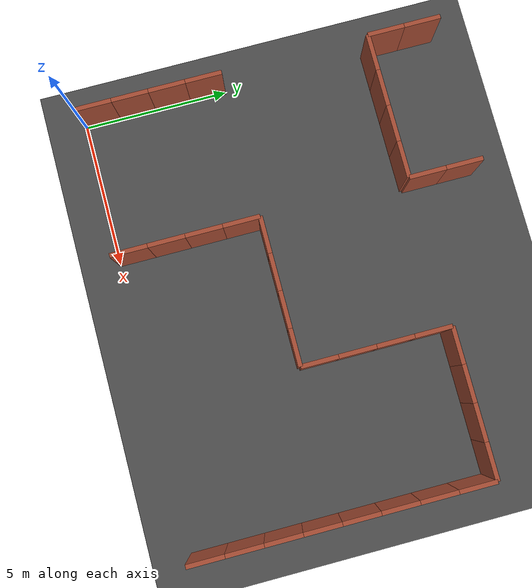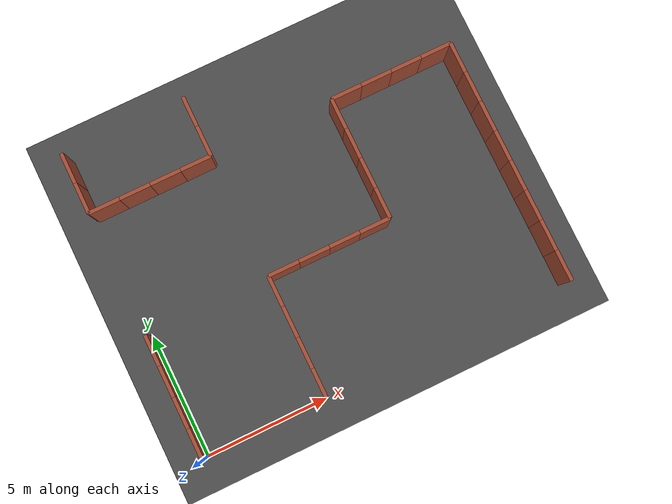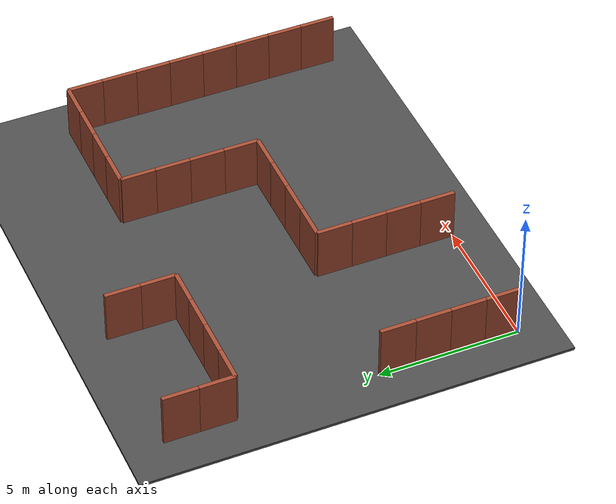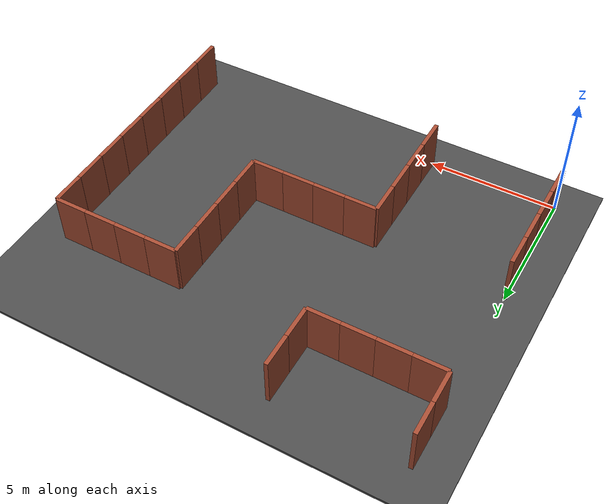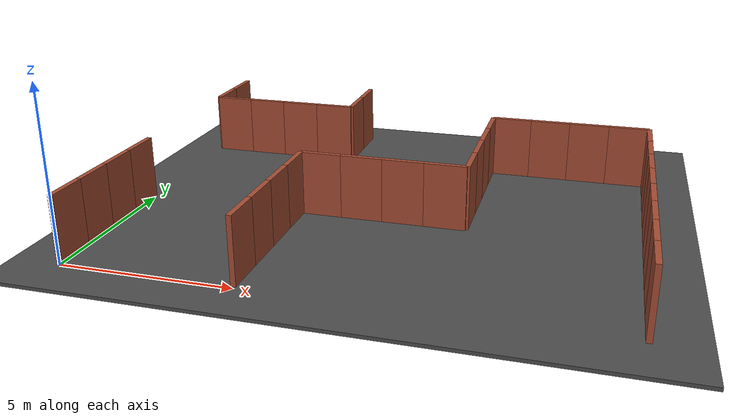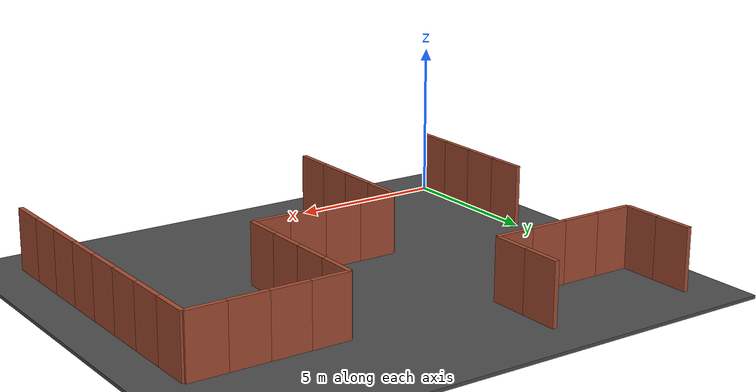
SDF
<sdf version="1.6">
 <world name="default">
  <model name="ground_plane">
   <static>1</static>
   <link name="link">
    <collision name="collision">
     <geometry><plane><normal>0 0 1</normal><size>100 100</size></plane></geometry>
     <surface><friction><ode><mu>100</mu><mu2>50</mu2></ode></friction></surface>
    </collision>
    <visual name="visual">
     <cast_shadows>0</cast_shadows>
     <geometry><plane><normal>0 0 1</normal><size>100 100</size></plane></geometry>
     <material>
      <script><uri>file://media/materials/scripts/gazebo.material</uri><name>Gazebo/Grey</name></script>
     </material>
    </visual>
   </link>
  </model>
  <model name="asphalt_plane">
   <static>1</static>
   <link name="link">
    <collision name="collision"><geometry><box><size>100 100 0.1</size></box></geometry></collision>
    <visual name="visual">
     <cast_shadows>0</cast_shadows>
     <geometry><box><size>100 100 0.1</size></box></geometry>
     <material>
      <script>
       <uri>model://asphalt_plane/materials/scripts</uri>
       <uri>model://asphalt_plane/materials/textures</uri>
       <name>vrc/asphalt</name>
      </script>
     </material>
    </visual>
   </link>
  </model>
  <model name="brick_wall_20_20_horizontal1">
   <pose>0 0.625 0 0 -0 1.5708</pose>
   <link name="Wall_0">
    <collision name="Wall_0_Collision">
     <geometry><box><size>1.25 0.15 2</size></box></geometry>
     <pose>0 0 1 0 -0 0</pose>
    </collision>
    <visual name="Wall_0_Visual">
     <pose>0 0 1 0 -0 0</pose>
     <geometry><box><size>1.25 0.15 2</size></box></geometry>
     <material>
      <script><uri>file://media/materials/scripts/gazebo.material</uri><name>Gazebo/Bricks</name></script>
      <ambient>1 1 1 1</ambient>
     </material>
     <meta><layer>0</layer></meta>
    </visual>
   </link>
   <static>1</static>
  </model>
  <model name="brick_wall_20_21_horizontal1">
   <pose>0 3.125 0 0 -0 1.5708</pose>
   <link name="Wall_0">
    <collision name="Wall_0_Collision">
     <geometry><box><size>1.25 0.15 2</size></box></geometry>
     <pose>0 0 1 0 -0 0</pose>
    </collision>
    <visual name="Wall_0_Visual">
     <pose>0 0 1 0 -0 0</pose>
     <geometry><box><size>1.25 0.15 2</size></box></geometry>
     <material>
      <script><uri>file://media/materials/scripts/gazebo.material</uri><name>Gazebo/Bricks</name></script>
      <ambient>1 1 1 1</ambient>
     </material>
     <meta><layer>0</layer></meta>
    </visual>
   </link>
   <static>1</static>
  </model>
  <model name="brick_wall_20_21_horizontal2">
   <pose>0 1.875 0 0 -0 1.5708</pose>
   <link name="Wall_0">
    <collision name="Wall_0_Collision">
     <geometry><box><size>1.25 0.15 2</size></box></geometry>
     <pose>0 0 1 0 -0 0</pose>
    </collision>
    <visual name="Wall_0_Visual">
     <pose>0 0 1 0 -0 0</pose>
     <geometry><box><size>1.25 0.15 2</size></box></geometry>
     <material>
      <script><uri>file://media/materials/scripts/gazebo.material</uri><name>Gazebo/Bricks</name></script>
      <ambient>1 1 1 1</ambient>
     </material>
     <meta><layer>0</layer></meta>
    </visual>
   </link>
   <static>1</static>
  </model>
  <model name="brick_wall_20_22_horizontal2">
   <pose>0 4.375 0 0 -0 1.5708</pose>
   <link name="Wall_0">
    <collision name="Wall_0_Collision">
     <geometry><box><size>1.25 0.15 2</size></box></geometry>
     <pose>0 0 1 0 -0 0</pose>
    </collision>
    <visual name="Wall_0_Visual">
     <pose>0 0 1 0 -0 0</pose>
     <geometry><box><size>1.25 0.15 2</size></box></geometry>
     <material>
      <script><uri>file://media/materials/scripts/gazebo.material</uri><name>Gazebo/Bricks</name></script>
      <ambient>1 1 1 1</ambient>
     </material>
     <meta><layer>0</layer></meta>
    </visual>
   </link>
   <static>1</static>
  </model>
  <model name="brick_wall_20_24_vertical1">
   <pose>0.625 10 0 0 -0 0</pose>
   <link name="Wall_0">
    <collision name="Wall_0_Collision">
     <geometry><box><size>1.25 0.15 2</size></box></geometry>
     <pose>0 0 1 0 -0 0</pose>
    </collision>
    <visual name="Wall_0_Visual">
     <pose>0 0 1 0 -0 0</pose>
     <geometry><box><size>1.25 0.15 2</size></box></geometry>
     <material>
      <script><uri>file://media/materials/scripts/gazebo.material</uri><name>Gazebo/Bricks</name></script>
      <ambient>1 1 1 1</ambient>
     </material>
     <meta><layer>0</layer></meta>
    </visual>
   </link>
   <static>1</static>
  </model>
  <model name="brick_wall_20_24_horizontal1">
   <pose>0 10.625 0 0 -0 1.5708</pose>
   <link name="Wall_0">
    <collision name="Wall_0_Collision">
     <geometry><box><size>1.25 0.15 2</size></box></geometry>
     <pose>0 0 1 0 -0 0</pose>
    </collision>
    <visual name="Wall_0_Visual">
     <pose>0 0 1 0 -0 0</pose>
     <geometry><box><size>1.25 0.15 2</size></box></geometry>
     <material>
      <script><uri>file://media/materials/scripts/gazebo.material</uri><name>Gazebo/Bricks</name></script>
      <ambient>1 1 1 1</ambient>
     </material>
     <meta><layer>0</layer></meta>
    </visual>
   </link>
   <static>1</static>
  </model>
  <model name="brick_wall_20_25_horizontal2">
   <pose>0 11.875 0 0 -0 1.5708</pose>
   <link name="Wall_0">
    <collision name="Wall_0_Collision">
     <geometry><box><size>1.25 0.15 2</size></box></geometry>
     <pose>0 0 1 0 -0 0</pose>
    </collision>
    <visual name="Wall_0_Visual">
     <pose>0 0 1 0 -0 0</pose>
     <geometry><box><size>1.25 0.15 2</size></box></geometry>
     <material>
      <script><uri>file://media/materials/scripts/gazebo.material</uri><name>Gazebo/Bricks</name></script>
      <ambient>1 1 1 1</ambient>
     </material>
     <meta><layer>0</layer></meta>
    </visual>
   </link>
   <static>1</static>
  </model>
  <model name="brick_wall_21_24_vertical1">
   <pose>3.125 10 0 0 -0 0</pose>
   <link name="Wall_0">
    <collision name="Wall_0_Collision">
     <geometry><box><size>1.25 0.15 2</size></box></geometry>
     <pose>0 0 1 0 -0 0</pose>
    </collision>
    <visual name="Wall_0_Visual">
     <pose>0 0 1 0 -0 0</pose>
     <geometry><box><size>1.25 0.15 2</size></box></geometry>
     <material>
      <script><uri>file://media/materials/scripts/gazebo.material</uri><name>Gazebo/Bricks</name></script>
      <ambient>1 1 1 1</ambient>
     </material>
     <meta><layer>0</layer></meta>
    </visual>
   </link>
   <static>1</static>
  </model>
  <model name="brick_wall_21_24_vertical2">
   <pose>1.875 10 0 0 -0 0</pose>
   <link name="Wall_0">
    <collision name="Wall_0_Collision">
     <geometry><box><size>1.25 0.15 2</size></box></geometry>
     <pose>0 0 1 0 -0 0</pose>
    </collision>
    <visual name="Wall_0_Visual">
     <pose>0 0 1 0 -0 0</pose>
     <geometry><box><size>1.25 0.15 2</size></box></geometry>
     <material>
      <script><uri>file://media/materials/scripts/gazebo.material</uri><name>Gazebo/Bricks</name></script>
      <ambient>1 1 1 1</ambient>
     </material>
     <meta><layer>0</layer></meta>
    </visual>
   </link>
   <static>1</static>
  </model>
  <model name="brick_wall_22_20_horizontal1">
   <pose>5 0.625 0 0 -0 1.5708</pose>
   <link name="Wall_0">
    <collision name="Wall_0_Collision">
     <geometry><box><size>1.25 0.15 2</size></box></geometry>
     <pose>0 0 1 0 -0 0</pose>
    </collision>
    <visual name="Wall_0_Visual">
     <pose>0 0 1 0 -0 0</pose>
     <geometry><box><size>1.25 0.15 2</size></box></geometry>
     <material>
      <script><uri>file://media/materials/scripts/gazebo.material</uri><name>Gazebo/Bricks</name></script>
      <ambient>1 1 1 1</ambient>
     </material>
     <meta><layer>0</layer></meta>
    </visual>
   </link>
   <static>1</static>
  </model>
  <model name="brick_wall_22_21_horizontal1">
   <pose>5 3.125 0 0 -0 1.5708</pose>
   <link name="Wall_0">
    <collision name="Wall_0_Collision">
     <geometry><box><size>1.25 0.15 2</size></box></geometry>
     <pose>0 0 1 0 -0 0</pose>
    </collision>
    <visual name="Wall_0_Visual">
     <pose>0 0 1 0 -0 0</pose>
     <geometry><box><size>1.25 0.15 2</size></box></geometry>
     <material>
      <script><uri>file://media/materials/scripts/gazebo.material</uri><name>Gazebo/Bricks</name></script>
      <ambient>1 1 1 1</ambient>
     </material>
     <meta><layer>0</layer></meta>
    </visual>
   </link>
   <static>1</static>
  </model>
  <model name="brick_wall_22_21_horizontal2">
   <pose>5 1.875 0 0 -0 1.5708</pose>
   <link name="Wall_0">
    <collision name="Wall_0_Collision">
     <geometry><box><size>1.25 0.15 2</size></box></geometry>
     <pose>0 0 1 0 -0 0</pose>
    </collision>
    <visual name="Wall_0_Visual">
     <pose>0 0 1 0 -0 0</pose>
     <geometry><box><size>1.25 0.15 2</size></box></geometry>
     <material>
      <script><uri>file://media/materials/scripts/gazebo.material</uri><name>Gazebo/Bricks</name></script>
      <ambient>1 1 1 1</ambient>
     </material>
     <meta><layer>0</layer></meta>
    </visual>
   </link>
   <static>1</static>
  </model>
  <model name="brick_wall_22_22_vertical1">
   <pose>5.625 5 0 0 -0 0</pose>
   <link name="Wall_0">
    <collision name="Wall_0_Collision">
     <geometry><box><size>1.25 0.15 2</size></box></geometry>
     <pose>0 0 1 0 -0 0</pose>
    </collision>
    <visual name="Wall_0_Visual">
     <pose>0 0 1 0 -0 0</pose>
     <geometry><box><size>1.25 0.15 2</size></box></geometry>
     <material>
      <script><uri>file://media/materials/scripts/gazebo.material</uri><name>Gazebo/Bricks</name></script>
      <ambient>1 1 1 1</ambient>
     </material>
     <meta><layer>0</layer></meta>
    </visual>
   </link>
   <static>1</static>
  </model>
  <model name="brick_wall_22_22_horizontal2">
   <pose>5 4.375 0 0 -0 1.5708</pose>
   <link name="Wall_0">
    <collision name="Wall_0_Collision">
     <geometry><box><size>1.25 0.15 2</size></box></geometry>
     <pose>0 0 1 0 -0 0</pose>
    </collision>
    <visual name="Wall_0_Visual">
     <pose>0 0 1 0 -0 0</pose>
     <geometry><box><size>1.25 0.15 2</size></box></geometry>
     <material>
      <script><uri>file://media/materials/scripts/gazebo.material</uri><name>Gazebo/Bricks</name></script>
      <ambient>1 1 1 1</ambient>
     </material>
     <meta><layer>0</layer></meta>
    </visual>
   </link>
   <static>1</static>
  </model>
  <model name="brick_wall_22_24_vertical2">
   <pose>4.375 10 0 0 -0 0</pose>
   <link name="Wall_0">
    <collision name="Wall_0_Collision">
     <geometry><box><size>1.25 0.15 2</size></box></geometry>
     <pose>0 0 1 0 -0 0</pose>
    </collision>
    <visual name="Wall_0_Visual">
     <pose>0 0 1 0 -0 0</pose>
     <geometry><box><size>1.25 0.15 2</size></box></geometry>
     <material>
      <script><uri>file://media/materials/scripts/gazebo.material</uri><name>Gazebo/Bricks</name></script>
      <ambient>1 1 1 1</ambient>
     </material>
     <meta><layer>0</layer></meta>
    </visual>
   </link>
   <static>1</static>
  </model>
  <model name="brick_wall_22_24_horizontal1">
   <pose>5 10.625 0 0 -0 1.5708</pose>
   <link name="Wall_0">
    <collision name="Wall_0_Collision">
     <geometry><box><size>1.25 0.15 2</size></box></geometry>
     <pose>0 0 1 0 -0 0</pose>
    </collision>
    <visual name="Wall_0_Visual">
     <pose>0 0 1 0 -0 0</pose>
     <geometry><box><size>1.25 0.15 2</size></box></geometry>
     <material>
      <script><uri>file://media/materials/scripts/gazebo.material</uri><name>Gazebo/Bricks</name></script>
      <ambient>1 1 1 1</ambient>
     </material>
     <meta><layer>0</layer></meta>
    </visual>
   </link>
   <static>1</static>
  </model>
  <model name="brick_wall_22_25_horizontal2">
   <pose>5 11.875 0 0 -0 1.5708</pose>
   <link name="Wall_0">
    <collision name="Wall_0_Collision">
     <geometry><box><size>1.25 0.15 2</size></box></geometry>
     <pose>0 0 1 0 -0 0</pose>
    </collision>
    <visual name="Wall_0_Visual">
     <pose>0 0 1 0 -0 0</pose>
     <geometry><box><size>1.25 0.15 2</size></box></geometry>
     <material>
      <script><uri>file://media/materials/scripts/gazebo.material</uri><name>Gazebo/Bricks</name></script>
      <ambient>1 1 1 1</ambient>
     </material>
     <meta><layer>0</layer></meta>
    </visual>
   </link>
   <static>1</static>
  </model>
  <model name="brick_wall_23_22_vertical1">
   <pose>8.125 5 0 0 -0 0</pose>
   <link name="Wall_0">
    <collision name="Wall_0_Collision">
     <geometry><box><size>1.25 0.15 2</size></box></geometry>
     <pose>0 0 1 0 -0 0</pose>
    </collision>
    <visual name="Wall_0_Visual">
     <pose>0 0 1 0 -0 0</pose>
     <geometry><box><size>1.25 0.15 2</size></box></geometry>
     <material>
      <script><uri>file://media/materials/scripts/gazebo.material</uri><name>Gazebo/Bricks</name></script>
      <ambient>1 1 1 1</ambient>
     </material>
     <meta><layer>0</layer></meta>
    </visual>
   </link>
   <static>1</static>
  </model>
  <model name="brick_wall_23_22_vertical2">
   <pose>6.875 5 0 0 -0 0</pose>
   <link name="Wall_0">
    <collision name="Wall_0_Collision">
     <geometry><box><size>1.25 0.15 2</size></box></geometry>
     <pose>0 0 1 0 -0 0</pose>
    </collision>
    <visual name="Wall_0_Visual">
     <pose>0 0 1 0 -0 0</pose>
     <geometry><box><size>1.25 0.15 2</size></box></geometry>
     <material>
      <script><uri>file://media/materials/scripts/gazebo.material</uri><name>Gazebo/Bricks</name></script>
      <ambient>1 1 1 1</ambient>
     </material>
     <meta><layer>0</layer></meta>
    </visual>
   </link>
   <static>1</static>
  </model>
  <model name="brick_wall_24_22_vertical2">
   <pose>9.375 5 0 0 -0 0</pose>
   <link name="Wall_0">
    <collision name="Wall_0_Collision">
     <geometry><box><size>1.25 0.15 2</size></box></geometry>
     <pose>0 0 1 0 -0 0</pose>
    </collision>
    <visual name="Wall_0_Visual">
     <pose>0 0 1 0 -0 0</pose>
     <geometry><box><size>1.25 0.15 2</size></box></geometry>
     <material>
      <script><uri>file://media/materials/scripts/gazebo.material</uri><name>Gazebo/Bricks</name></script>
      <ambient>1 1 1 1</ambient>
     </material>
     <meta><layer>0</layer></meta>
    </visual>
   </link>
   <static>1</static>
  </model>
  <model name="brick_wall_24_22_horizontal1">
   <pose>10 5.625 0 0 -0 1.5708</pose>
   <link name="Wall_0">
    <collision name="Wall_0_Collision">
     <geometry><box><size>1.25 0.15 2</size></box></geometry>
     <pose>0 0 1 0 -0 0</pose>
    </collision>
    <visual name="Wall_0_Visual">
     <pose>0 0 1 0 -0 0</pose>
     <geometry><box><size>1.25 0.15 2</size></box></geometry>
     <material>
      <script><uri>file://media/materials/scripts/gazebo.material</uri><name>Gazebo/Bricks</name></script>
      <ambient>1 1 1 1</ambient>
     </material>
     <meta><layer>0</layer></meta>
    </visual>
   </link>
   <static>1</static>
  </model>
  <model name="brick_wall_24_23_horizontal1">
   <pose>10 8.125 0 0 -0 1.5708</pose>
   <link name="Wall_0">
    <collision name="Wall_0_Collision">
     <geometry><box><size>1.25 0.15 2</size></box></geometry>
     <pose>0 0 1 0 -0 0</pose>
    </collision>
    <visual name="Wall_0_Visual">
     <pose>0 0 1 0 -0 0</pose>
     <geometry><box><size>1.25 0.15 2</size></box></geometry>
     <material>
      <script><uri>file://media/materials/scripts/gazebo.material</uri><name>Gazebo/Bricks</name></script>
      <ambient>1 1 1 1</ambient>
     </material>
     <meta><layer>0</layer></meta>
    </visual>
   </link>
   <static>1</static>
  </model>
  <model name="brick_wall_24_23_horizontal2">
   <pose>10 6.875 0 0 -0 1.5708</pose>
   <link name="Wall_0">
    <collision name="Wall_0_Collision">
     <geometry><box><size>1.25 0.15 2</size></box></geometry>
     <pose>0 0 1 0 -0 0</pose>
    </collision>
    <visual name="Wall_0_Visual">
     <pose>0 0 1 0 -0 0</pose>
     <geometry><box><size>1.25 0.15 2</size></box></geometry>
     <material>
      <script><uri>file://media/materials/scripts/gazebo.material</uri><name>Gazebo/Bricks</name></script>
      <ambient>1 1 1 1</ambient>
     </material>
     <meta><layer>0</layer></meta>
    </visual>
   </link>
   <static>1</static>
  </model>
  <model name="brick_wall_24_24_vertical1">
   <pose>10.625 10 0 0 -0 0</pose>
   <link name="Wall_0">
    <collision name="Wall_0_Collision">
     <geometry><box><size>1.25 0.15 2</size></box></geometry>
     <pose>0 0 1 0 -0 0</pose>
    </collision>
    <visual name="Wall_0_Visual">
     <pose>0 0 1 0 -0 0</pose>
     <geometry><box><size>1.25 0.15 2</size></box></geometry>
     <material>
      <script><uri>file://media/materials/scripts/gazebo.material</uri><name>Gazebo/Bricks</name></script>
      <ambient>1 1 1 1</ambient>
     </material>
     <meta><layer>0</layer></meta>
    </visual>
   </link>
   <static>1</static>
  </model>
  <model name="brick_wall_24_24_horizontal2">
   <pose>10 9.375 0 0 -0 1.5708</pose>
   <link name="Wall_0">
    <collision name="Wall_0_Collision">
     <geometry><box><size>1.25 0.15 2</size></box></geometry>
     <pose>0 0 1 0 -0 0</pose>
    </collision>
    <visual name="Wall_0_Visual">
     <pose>0 0 1 0 -0 0</pose>
     <geometry><box><size>1.25 0.15 2</size></box></geometry>
     <material>
      <script><uri>file://media/materials/scripts/gazebo.material</uri><name>Gazebo/Bricks</name></script>
      <ambient>1 1 1 1</ambient>
     </material>
     <meta><layer>0</layer></meta>
    </visual>
   </link>
   <static>1</static>
  </model>
  <model name="brick_wall_25_24_vertical1">
   <pose>13.125 10 0 0 -0 0</pose>
   <link name="Wall_0">
    <collision name="Wall_0_Collision">
     <geometry><box><size>1.25 0.15 2</size></box></geometry>
     <pose>0 0 1 0 -0 0</pose>
    </collision>
    <visual name="Wall_0_Visual">
     <pose>0 0 1 0 -0 0</pose>
     <geometry><box><size>1.25 0.15 2</size></box></geometry>
     <material>
      <script><uri>file://media/materials/scripts/gazebo.material</uri><name>Gazebo/Bricks</name></script>
      <ambient>1 1 1 1</ambient>
     </material>
     <meta><layer>0</layer></meta>
    </visual>
   </link>
   <static>1</static>
  </model>
  <model name="brick_wall_25_24_vertical2">
   <pose>11.875 10 0 0 -0 0</pose>
   <link name="Wall_0">
    <collision name="Wall_0_Collision">
     <geometry><box><size>1.25 0.15 2</size></box></geometry>
     <pose>0 0 1 0 -0 0</pose>
    </collision>
    <visual name="Wall_0_Visual">
     <pose>0 0 1 0 -0 0</pose>
     <geometry><box><size>1.25 0.15 2</size></box></geometry>
     <material>
      <script><uri>file://media/materials/scripts/gazebo.material</uri><name>Gazebo/Bricks</name></script>
      <ambient>1 1 1 1</ambient>
     </material>
     <meta><layer>0</layer></meta>
    </visual>
   </link>
   <static>1</static>
  </model>
  <model name="brick_wall_26_20_horizontal1">
   <pose>15 0.625 0 0 -0 1.5708</pose>
   <link name="Wall_0">
    <collision name="Wall_0_Collision">
     <geometry><box><size>1.25 0.15 2</size></box></geometry>
     <pose>0 0 1 0 -0 0</pose>
    </collision>
    <visual name="Wall_0_Visual">
     <pose>0 0 1 0 -0 0</pose>
     <geometry><box><size>1.25 0.15 2</size></box></geometry>
     <material>
      <script><uri>file://media/materials/scripts/gazebo.material</uri><name>Gazebo/Bricks</name></script>
      <ambient>1 1 1 1</ambient>
     </material>
     <meta><layer>0</layer></meta>
    </visual>
   </link>
   <static>1</static>
  </model>
  <model name="brick_wall_26_21_horizontal1">
   <pose>15 3.125 0 0 -0 1.5708</pose>
   <link name="Wall_0">
    <collision name="Wall_0_Collision">
     <geometry><box><size>1.25 0.15 2</size></box></geometry>
     <pose>0 0 1 0 -0 0</pose>
    </collision>
    <visual name="Wall_0_Visual">
     <pose>0 0 1 0 -0 0</pose>
     <geometry><box><size>1.25 0.15 2</size></box></geometry>
     <material>
      <script><uri>file://media/materials/scripts/gazebo.material</uri><name>Gazebo/Bricks</name></script>
      <ambient>1 1 1 1</ambient>
     </material>
     <meta><layer>0</layer></meta>
    </visual>
   </link>
   <static>1</static>
  </model>
  <model name="brick_wall_26_21_horizontal2">
   <pose>15 1.875 0 0 -0 1.5708</pose>
   <link name="Wall_0">
    <collision name="Wall_0_Collision">
     <geometry><box><size>1.25 0.15 2</size></box></geometry>
     <pose>0 0 1 0 -0 0</pose>
    </collision>
    <visual name="Wall_0_Visual">
     <pose>0 0 1 0 -0 0</pose>
     <geometry><box><size>1.25 0.15 2</size></box></geometry>
     <material>
      <script><uri>file://media/materials/scripts/gazebo.material</uri><name>Gazebo/Bricks</name></script>
      <ambient>1 1 1 1</ambient>
     </material>
     <meta><layer>0</layer></meta>
    </visual>
   </link>
   <static>1</static>
  </model>
  <model name="brick_wall_26_22_horizontal1">
   <pose>15 5.625 0 0 -0 1.5708</pose>
   <link name="Wall_0">
    <collision name="Wall_0_Collision">
     <geometry><box><size>1.25 0.15 2</size></box></geometry>
     <pose>0 0 1 0 -0 0</pose>
    </collision>
    <visual name="Wall_0_Visual">
     <pose>0 0 1 0 -0 0</pose>
     <geometry><box><size>1.25 0.15 2</size></box></geometry>
     <material>
      <script><uri>file://media/materials/scripts/gazebo.material</uri><name>Gazebo/Bricks</name></script>
      <ambient>1 1 1 1</ambient>
     </material>
     <meta><layer>0</layer></meta>
    </visual>
   </link>
   <static>1</static>
  </model>
  <model name="brick_wall_26_22_horizontal2">
   <pose>15 4.375 0 0 -0 1.5708</pose>
   <link name="Wall_0">
    <collision name="Wall_0_Collision">
     <geometry><box><size>1.25 0.15 2</size></box></geometry>
     <pose>0 0 1 0 -0 0</pose>
    </collision>
    <visual name="Wall_0_Visual">
     <pose>0 0 1 0 -0 0</pose>
     <geometry><box><size>1.25 0.15 2</size></box></geometry>
     <material>
      <script><uri>file://media/materials/scripts/gazebo.material</uri><name>Gazebo/Bricks</name></script>
      <ambient>1 1 1 1</ambient>
     </material>
     <meta><layer>0</layer></meta>
    </visual>
   </link>
   <static>1</static>
  </model>
  <model name="brick_wall_26_23_horizontal1">
   <pose>15 8.125 0 0 -0 1.5708</pose>
   <link name="Wall_0">
    <collision name="Wall_0_Collision">
     <geometry><box><size>1.25 0.15 2</size></box></geometry>
     <pose>0 0 1 0 -0 0</pose>
    </collision>
    <visual name="Wall_0_Visual">
     <pose>0 0 1 0 -0 0</pose>
     <geometry><box><size>1.25 0.15 2</size></box></geometry>
     <material>
      <script><uri>file://media/materials/scripts/gazebo.material</uri><name>Gazebo/Bricks</name></script>
      <ambient>1 1 1 1</ambient>
     </material>
     <meta><layer>0</layer></meta>
    </visual>
   </link>
   <static>1</static>
  </model>
  <model name="brick_wall_26_23_horizontal2">
   <pose>15 6.875 0 0 -0 1.5708</pose>
   <link name="Wall_0">
    <collision name="Wall_0_Collision">
     <geometry><box><size>1.25 0.15 2</size></box></geometry>
     <pose>0 0 1 0 -0 0</pose>
    </collision>
    <visual name="Wall_0_Visual">
     <pose>0 0 1 0 -0 0</pose>
     <geometry><box><size>1.25 0.15 2</size></box></geometry>
     <material>
      <script><uri>file://media/materials/scripts/gazebo.material</uri><name>Gazebo/Bricks</name></script>
      <ambient>1 1 1 1</ambient>
     </material>
     <meta><layer>0</layer></meta>
    </visual>
   </link>
   <static>1</static>
  </model>
  <model name="brick_wall_26_24_vertical2">
   <pose>14.375 10 0 0 -0 0</pose>
   <link name="Wall_0">
    <collision name="Wall_0_Collision">
     <geometry><box><size>1.25 0.15 2</size></box></geometry>
     <pose>0 0 1 0 -0 0</pose>
    </collision>
    <visual name="Wall_0_Visual">
     <pose>0 0 1 0 -0 0</pose>
     <geometry><box><size>1.25 0.15 2</size></box></geometry>
     <material>
      <script><uri>file://media/materials/scripts/gazebo.material</uri><name>Gazebo/Bricks</name></script>
      <ambient>1 1 1 1</ambient>
     </material>
     <meta><layer>0</layer></meta>
    </visual>
   </link>
   <static>1</static>
  </model>
  <model name="brick_wall_26_24_horizontal2">
   <pose>15 9.375 0 0 -0 1.5708</pose>
   <link name="Wall_0">
    <collision name="Wall_0_Collision">
     <geometry><box><size>1.25 0.15 2</size></box></geometry>
     <pose>0 0 1 0 -0 0</pose>
    </collision>
    <visual name="Wall_0_Visual">
     <pose>0 0 1 0 -0 0</pose>
     <geometry><box><size>1.25 0.15 2</size></box></geometry>
     <material>
      <script><uri>file://media/materials/scripts/gazebo.material</uri><name>Gazebo/Bricks</name></script>
      <ambient>1 1 1 1</ambient>
     </material>
     <meta><layer>0</layer></meta>
    </visual>
   </link>
   <static>1</static>
  </model>
 </world>
</sdf>
